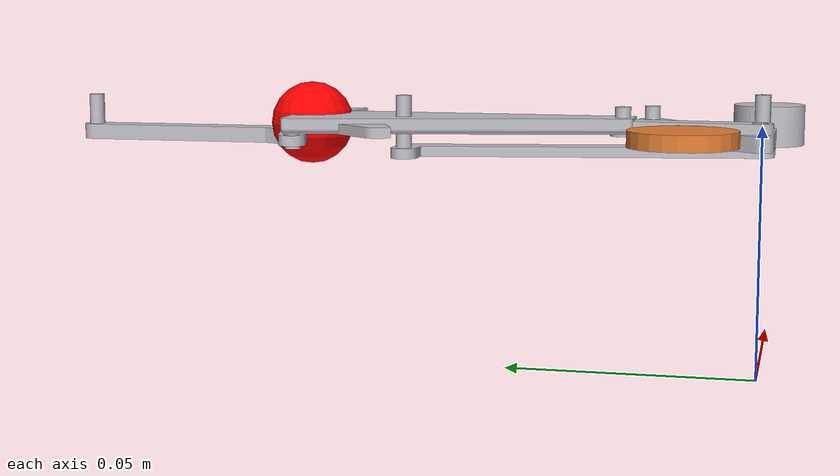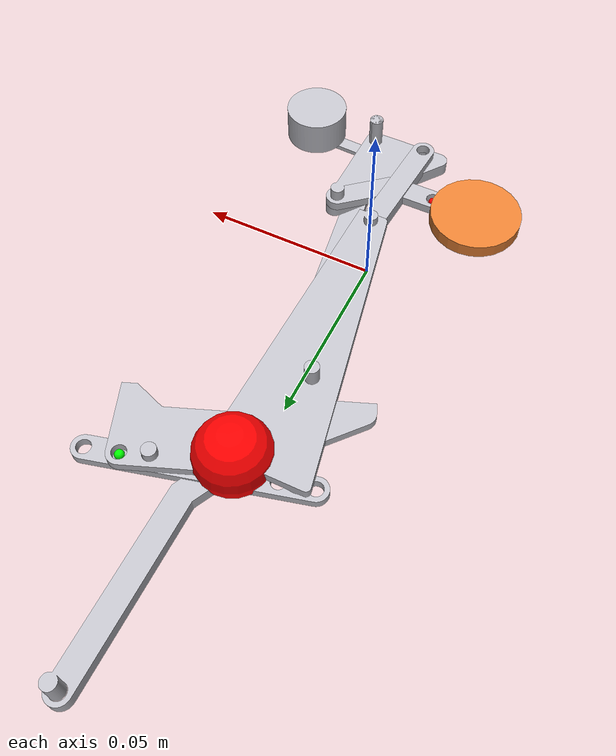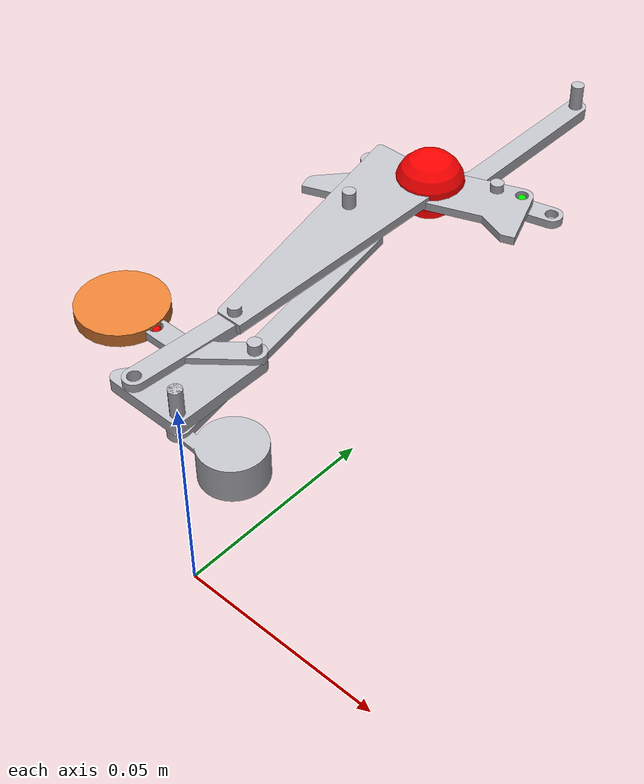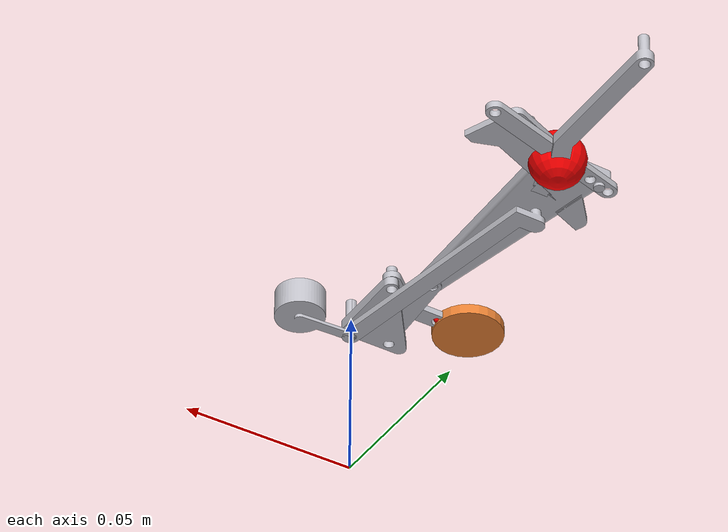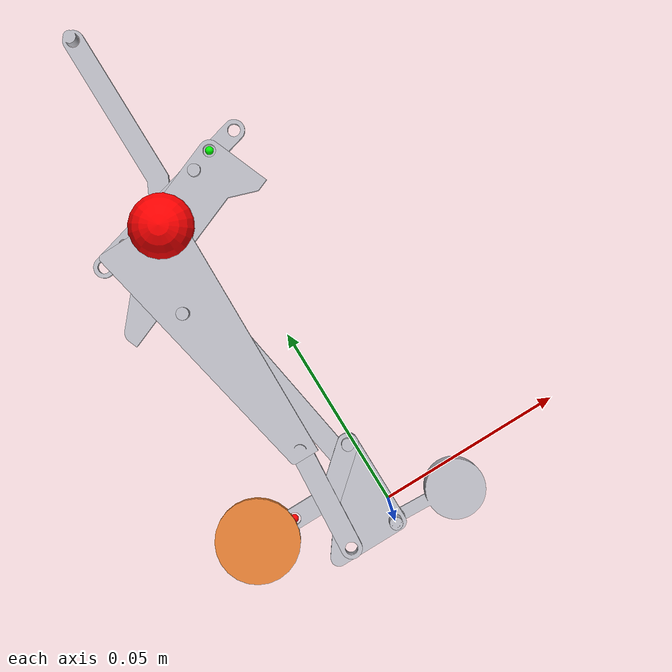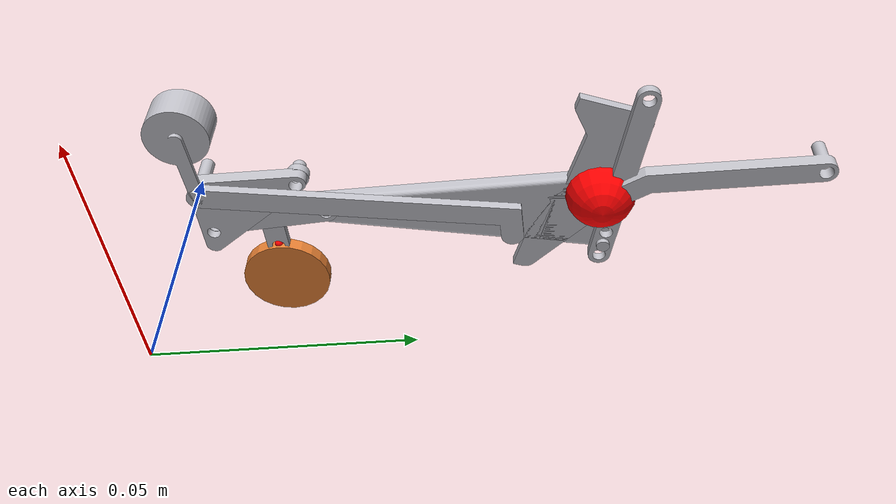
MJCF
<mujoco model="klann_leg">

  <compiler angle="degree" meshdir="meshes/"/>
  <option gravity="0 0 0" timestep="0.002"/>

  <default>
    <geom density="1200" contype="0" conaffinity="0" rgba="0.75 0.75 0.78 1"/>
    <joint type="hinge" axis="0 0 1" damping="0.002"/>
  </default>

  <asset>
    <mesh name="ground_link_m"        file="ground_link.STL"          scale="0.001 0.001 0.001"/>
    <mesh name="upper_ternary_m"      file="upper_ternary.STL"        scale="0.001 0.001 0.001"/>
    <mesh name="lower_ternary_m"      file="lower_ternary.STL"        scale="0.001 0.001 0.001"/>
    <mesh name="bent_link_m"          file="bent_link.STL"            scale="0.001 0.001 0.001"/>
    <mesh name="straight_link_m"      file="straight_link.STL"        scale="0.001 0.001 0.001"/>
    <mesh name="long_straight_link_m" file="long_straight_link.STL"   scale="0.001 0.001 0.001"/>
    <mesh name="long_bent_link_m"     file="long_bent_link.STL"       scale="0.001 0.001 0.001"/>
    <mesh name="foot_stabiliser_m"    file="foot_stabiliser_link.STL" scale="0.001 0.001 0.001"/>
    <mesh name="foot_link_m"          file="foot_link.STL"            scale="0.001 0.001 0.001"/>
  </asset>

  <worldbody>
    <light pos="0 0 1" dir="0 0 -1" diffuse="1 1 1"/>
    <camera name="side" pos="0 -0.3 0.05" xyaxes="1 0 0 0 0 1"/>

    <!-- ground_link: static frame link. Body origin placed at its pivot F,
         so children hinge at (0,0,0) in this frame. -->
    <body name="ground_link" pos="0 0.0 0.05">
      <geom name="ground_link_g" type="mesh" mesh="ground_link_m" pos="-0.0015 -0.0077 -0.006"/>

      <!-- crank: throw radius is a PLACEHOLDER (see note 1); position is
           solved so the crank loop (bent_link -> upper_ternary.apex) closes
           exactly at this rest pose. -->
      <body name="crank" pos="-0.0297 0.01271 0">
        <joint name="crank_joint" pos="0 0 0"/>
        <geom name="crank_g" type="cylinder" size="0.010 0.0015" rgba="0.9 0.5 0.2 1"/>
        <site name="crank_pin" pos="0.010 0 0" size="0.001" rgba="1 0 0 1"/>

        <body name="bent_link" pos="0.010 0 0">
          <joint name="bent_link_joint" pos="0 0 0"/>
          <geom name="bent_link_g" type="mesh" mesh="bent_link_m" pos="-0.01905 -0.0025 -0.001"/>
          <site name="bent_link_far" pos="0.01970 0.00829 0" size="0.001" rgba="0 1 0 1"/>
        </body>
      </body>

      <!-- upper_ternary: fixed pivot mates ground_link's F -->
      <body name="upper_ternary" pos="0 0 0">
        <joint name="upper_ternary_joint" pos="0 0 0"/>
        <geom name="upper_ternary_g" type="mesh" mesh="upper_ternary_m" pos="-0.0177 -0.0026 -0.0035"/>
        <site name="upper_ternary_apex" pos="0 0.0210 0" size="0.001" rgba="0 1 0 1"/>

        <body name="straight_link" pos="-0.0120 0 0">
          <joint name="straight_link_joint" pos="0 0 0"/>
          <geom name="straight_link_g" type="mesh" mesh="straight_link_m" pos="-0.00245 -0.0025 -0.0015"/>

          <body name="lower_ternary" pos="0.00181 0.02561 0">
            <joint name="lower_ternary_joint" pos="0 0 0"/>
            <geom name="lower_ternary_g" type="mesh" mesh="lower_ternary_m" pos="-0.0165 -0.0022 -0.004"/>

            <body name="long_straight_link" pos="-0.0133 0.0610 0">
              <joint name="long_straight_link_joint" pos="0 0 0"/>
              <geom name="long_straight_link_g" type="mesh" mesh="long_straight_link_m" pos="-0.00595 -0.0034 -0.003"/>

              <body name="foot_link" pos="0.02635 0.00710 0">
                <joint name="foot_link_joint" pos="0 0 0"/>
                <geom name="foot_link_g" type="mesh" mesh="foot_link_m" pos="-0.03386 -0.02789 -0.001"/>
                <site name="foot_hole2" pos="0.00540 0.00222 0" size="0.001" rgba="0 1 0 1"/>
              </body>
            </body>

            <body name="long_bent_link" pos="-0.0003 0.0611 0">
              <site name="long_bent_link_far" pos="0 0 0" size="0.008" rgba="1 0 0 1"/>
              <joint name="long_bent_link_origin" pos="0 0 0" size="0.003"/>

              <geom name="long_bent_link_g" type="mesh" mesh="long_bent_link_m" pos="-0.0025 -0.0025 -0.0045"/>
              <site name="long_bent_link_far" pos="0.0050 0.0479 0" size="0.001" rgba="0 1 0 1"/>
            </body>
          </body>
        </body>
      </body>

      <!-- foot_stabiliser_link: also mates ground_link's F -->
      <body name="foot_stabiliser_link" pos="0 0 0">
        <joint name="foot_stabiliser_joint" pos="0 0 0"/>
        <geom name="foot_stabiliser_g" type="mesh" mesh="foot_stabiliser_m" pos="-0.0207 -0.0025 -0.006"/>
        <site name="foot_stabiliser_far" pos="-0.0166 0.0667 0" size="0.001" rgba="0 1 0 1"/>
      </body>
    </body>
  </worldbody>

  <equality>
    <connect name="loop_crank"     body1="bent_link"           body2="upper_ternary" anchor="0.01970 0.00829 0"/>
    <connect name="loop_foot4bar"  body1="long_bent_link"       body2="foot_link"     anchor="0.0050 0.0479 0"/>
    <connect name="loop_leveler"   body1="foot_stabiliser_link" body2="foot_link"     anchor="-0.0166 0.0667 0"/>
  </equality>

  <actuator>
    <motor name="crank_motor" joint="crank_joint" gear="1" ctrlrange="-1 1"/>
  </actuator>
</mujoco>
